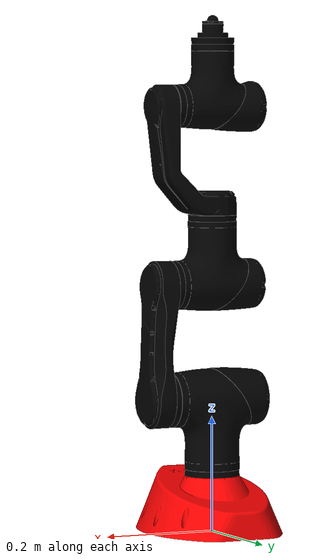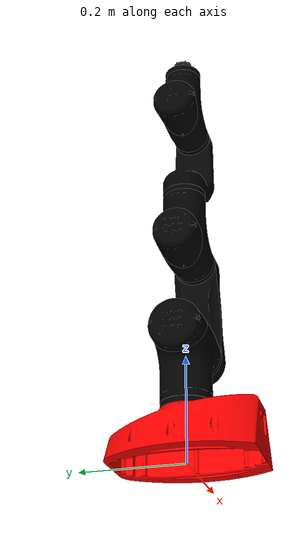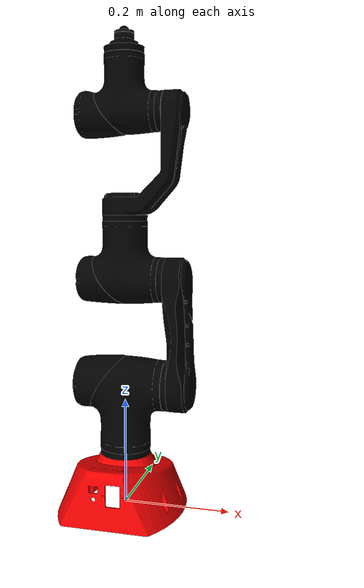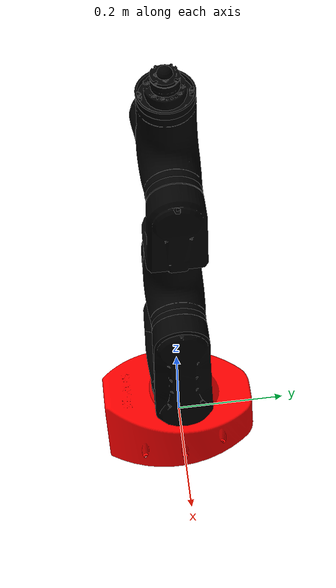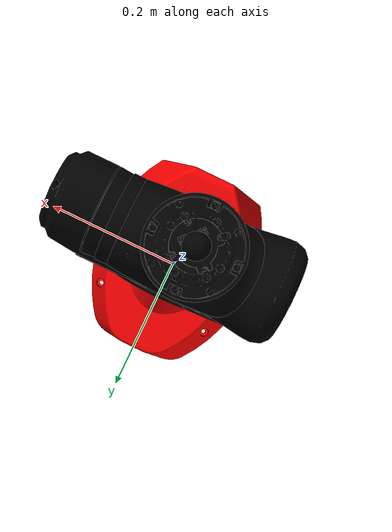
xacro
<?xml version="1.0"?>
<robot xmlns:xacro="http://ros.org/wiki/xacro" name="mara">
  <!-- common stuff -->
  <xacro:include filename="$(find mara_description)/urdf/reinforcement_learning/mara_gazebo_train.urdf.xacro"/>

  <!-- mara -->
  <xacro:include filename="$(find mara_description)/urdf/reinforcement_learning/mara_train.urdf.xacro"/>

  <!-- arm -->
  <xacro:mara_robot_train prefix="" ee_link_distance="0.0" MAC0="_00000000000"/>

  <link name="world"/>

  <link name="base_robot">
    <inertial>
      <origin rpy="0 0 0" xyz="8.625E-08 -4.6583E-06 0.03145"/>
      <mass value="7.033"/>
      <inertia ixx="0.1478344" ixy="0.00001" ixz="0.0" iyy="0.14782335" iyz="0.0" izz="0.29471799"/>
    </inertial>
    <visual>
      <origin rpy="0 0 0" xyz="0 0 0"/>
      <geometry>
        <mesh filename="package://mara_description/meshes/v8_MARA_Base.dae" scale="0.001 0.001 0.001"/>
      </geometry>
      <material name="Gazebo/Black">
        <color rgba="1. 0. 0. 1.0"/>
      </material>
    </visual>
    <collision>
      <origin rpy="0 0 0" xyz="0 0 0"/>
      <geometry>
        <mesh filename="package://mara_description/meshes/v8_MARA_Base.dae" scale="0.001 0.001 0.001"/>
      </geometry>
    </collision>
  </link>
  <gazebo reference="base_robot">
    <material>Gazebo/Black</material>
    <selfCollide>True</selfCollide>
  </gazebo>

  <joint name="world_to_base_robot" type="fixed">
    <origin rpy="0 0 0" xyz="0 0 0"/>
    <parent link="world"/>
    <child link="base_robot"/>
  </joint>

  <joint name="motor1" type="revolute">
    <origin rpy="0 0 0" xyz="0 0 0.06874"/>
    <parent link="base_robot"/>
    <child link="motor1_link"/>
    <axis xyz="0 0 1"/>
    <limit effort="104.0" lower="-3.1416" upper="3.1416" velocity="1.57"/>
    <dynamics damping="0" friction="0"/>
  </joint>
</robot>

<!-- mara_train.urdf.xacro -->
<robot xmlns:xacro="http://ros.org/wiki/xacro">

  <xacro:include filename="$(find mara_description)/urdf/mara.transmission.xacro" />
  <xacro:include filename="$(find mara_description)/urdf/reinforcement_learning/mara_gazebo_train.urdf.xacro" />

  <xacro:macro name="mara_robot_train"  params="prefix ee_link_distance MAC0">

    <link name="${prefix}motor1_link">
      <inertial>
        <origin rpy="0 0 0" xyz="0.02066 0 0.12051"/>
        <mass value="5.6"/>
        <inertia ixx="0.0200769278" ixy="-7.72273E-006" ixz="-0.0050158708" iyy="0.0257088151" iyz="5.49229E-006" izz="0.0120821377"/>
      </inertial>
      <visual>
        <origin rpy="0 0 0" xyz="0 0 0"/>
        <geometry>
          <mesh filename="package://mara_description/meshes/MARA_T49.dae" scale="0.001 0.001 0.001"/>
        </geometry>
        <material name="Gazebo/White">
          <color rgba="0. 0. 0. 1"/>
        </material>
      </visual>
      <collision>
        <origin rpy="0 0 0" xyz="0 0 0"/>
        <geometry>
          <mesh filename="package://mara_description/meshes/MARA_T49.dae" scale="0.001 0.001 0.001"/>
        </geometry>
      </collision>
    </link>
    <gazebo reference="${prefix}motor1_link">
      <material>Gazebo/White</material>
      <selfCollide>True</selfCollide>
    </gazebo>

    <link name="${prefix}motor1_cover">
      <inertial>
        <origin rpy="0 0 0" xyz="0 0 0"/>
        <mass value="0.0"/>
        <inertia ixx="0.0" ixy="0.0" ixz="0.0" iyy="0.0" iyz="0.0" izz="0.0"/>
      </inertial>
      <visual>
        <origin rpy="0 0 0" xyz="0 0 0"/>
        <geometry>
          <mesh filename="package://mara_description/meshes/MARA_T49_Black.dae" scale="0.001 0.001 0.001"/>
        </geometry>
        <material name="Gazebo/Black">
          <color rgba="0. 0. 0. 1"/>
        </material>
      </visual>
      <collision>
        <origin rpy="0 0 0" xyz="0 0 0"/>
        <geometry>
          <mesh filename="package://mara_description/meshes/MARA_T49_Black.dae" scale="0.001 0.001 0.001"/>
        </geometry>
      </collision>
    </link>
    <gazebo reference="${prefix}motor1_cover">
      <material>Gazebo/Black</material>
      <selfCollide>True</selfCollide>
    </gazebo>

    <link name="${prefix}motor2_link">
      <inertial>
        <origin rpy="0 0 0" xyz="-0.01665 0.0 0.09639"/>
        <mass value="1.24"/>
        <inertia ixx="0.0079614839" ixy="0.000000037" ixz="0.0003203013" iyy="0.007135338" iyz="-0.000001062" izz="0.001111114"/>
      </inertial>
      <visual>
        <origin rpy="0 0 0" xyz="0 0 0"/>
        <geometry>
          <mesh filename="package://mara_description/meshes/MARA_Link1.dae" scale="0.001 0.001 0.001"/>
        </geometry>
        <material name="Gazebo/Black">
          <color rgba="0. 0. 0. 1"/>
        </material>
      </visual>
      <collision>
        <origin rpy="0 0 0" xyz="0 0 0"/>
        <geometry>
          <mesh filename="package://mara_description/meshes/MARA_Link1.dae" scale="0.001 0.001 0.001"/>
        </geometry>
      </collision>
    </link>
    <gazebo reference="${prefix}motor2_link">
      <material>Gazebo/Black</material>
      <selfCollide>True</selfCollide>
    </gazebo>

    <link name="${prefix}motor3_link">
      <inertial>
        <origin rpy="0 0 0" xyz="-0.08963 0 0.0403"/>
        <mass value="3.95"/>
        <inertia ixx="0.0115136615" ixy="-1.231046E-005" ixz="0.003148516" iyy="0.0149841676" iyz="-8.81378E-006" izz="0.0070387807"/>
      </inertial>
      <visual>
        <origin rpy="0 0 0" xyz="0 0 0"/>
        <geometry>
          <mesh filename="package://mara_description/meshes/MARA_T30.dae" scale="0.001 0.001 0.001"/>
        </geometry>
        <material name="Gazebo/White">
          <color rgba="0. 0. 0. 1"/>
        </material>
      </visual>
      <collision>
        <origin rpy="0 0 0" xyz="0 0 0"/>
        <geometry>
          <mesh filename="package://mara_description/meshes/MARA_T30.dae" scale="0.001 0.001 0.001"/>
        </geometry>
      </collision>
    </link>
    <gazebo reference="${prefix}motor3_link">
      <material>Gazebo/White</material>
      <selfCollide>True</selfCollide>
    </gazebo>

    <link name="${prefix}motor3_cover">
      <inertial>
        <origin rpy="0 0 0" xyz="0 0 0"/>
        <mass value="0.0"/>
        <inertia ixx="0.0" ixy="0.0" ixz="0.0" iyy="0.0" iyz="0.0" izz="0.0"/>
      </inertial>
      <visual>
        <origin rpy="0 0 0" xyz="0 0 0"/>
        <geometry>
          <mesh filename="package://mara_description/meshes/MARA_T30_Black.dae" scale="0.001 0.001 0.001"/>
        </geometry>
        <material name="Gazebo/Black">
          <color rgba="0. 0. 0. 1"/>
        </material>
      </visual>
      <collision>
        <origin rpy="0 0 0" xyz="0 0 0"/>
        <geometry>
          <mesh filename="package://mara_description/meshes/MARA_T30_Black.dae" scale="0.001 0.001 0.001"/>
        </geometry>
      </collision>
    </link>
    <gazebo reference="${prefix}motor3_cover">
      <material>Gazebo/Black</material>
      <selfCollide>True</selfCollide>
    </gazebo>

    <link name="${prefix}motor4_link">
      <inertial>
        <origin rpy="0 0 0" xyz="0.06357 0.0 0.05698"/>
        <mass value="1.26"/>
        <inertia ixx="0.005919676" ixy="0.000000923" ixz="-0.0022280208" iyy="0.0068807393" iyz="6.1373E-007" izz="0.00257485"/>
      </inertial>
      <visual>
        <origin rpy="0 0 0" xyz="0 0 0"/>
        <geometry>
          <mesh filename="package://mara_description/meshes/MARA_Link2.dae" scale="0.001 0.001 0.001"/>
        </geometry>
        <material name="Gazebo/Black">
          <color rgba="0. 0. 0. 1"/>
        </material>
      </visual>
      <collision>
        <origin rpy="0 0 0" xyz="0 0 0"/>
        <geometry>
          <mesh filename="package://mara_description/meshes/MARA_Link2.dae" scale="0.001 0.001 0.001"/>
        </geometry>
      </collision>
    </link>
    <gazebo reference="${prefix}motor4_link">
      <material>Gazebo/Black</material>
      <selfCollide>True</selfCollide>
    </gazebo>

    <link name="${prefix}motor5_link">
      <inertial>
        <origin rpy="0 0 0" xyz="-0.09105 0.0 0.03676"/>
        <mass value="2.85"/>
        <inertia ixx="0.0072829492" ixy="3.77994E-006" ixz="0.0015682105" iyy="0.0098263499" iyz="2.52745E-006" izz="0.0045615321"/>
      </inertial>
      <visual>
        <origin rpy="0 0 0" xyz="0 0 0"/>
        <geometry>
          <mesh filename="package://mara_description/meshes/MARA_T5.4.dae" scale="0.001 0.001 0.001"/>
        </geometry>
        <material name="Gazebo/White">
          <color rgba="0. 0. 0. 1"/>
        </material>
      </visual>
      <collision>
        <origin rpy="0 0 0" xyz="0 0 0"/>
        <geometry>
          <mesh filename="package://mara_description/meshes/MARA_T5.4.dae" scale="0.001 0.001 0.001"/>
        </geometry>
      </collision>
    </link>
    <gazebo reference="${prefix}motor5_link">
      <material>Gazebo/White</material>
      <selfCollide>True</selfCollide>
    </gazebo>

    <link name="${prefix}motor5_cover">
      <inertial>
        <origin rpy="0 0 0" xyz="0 0 0"/>
        <mass value="0.0"/>
        <inertia ixx="0.0" ixy="0.0" ixz="0.0" iyy="0.0" iyz="0.0" izz="0.0"/>
      </inertial>
      <visual>
        <origin rpy="0 0 0" xyz="0 0 0"/>
        <geometry>
          <mesh filename="package://mara_description/meshes/MARA_T5.4_black.dae" scale="0.001 0.001 0.001"/>
        </geometry>
        <material name="Gazebo/Black">
          <color rgba="0. 0. 0. 1"/>
        </material>
      </visual>
      <collision>
        <origin rpy="0 0 0" xyz="0 0 0"/>
        <geometry>
          <mesh filename="package://mara_description/meshes/MARA_T5.4_black.dae" scale="0.001 0.001 0.001"/>
        </geometry>
      </collision>
    </link>
    <gazebo reference="${prefix}motor5_cover">
      <material>Gazebo/Black</material>
      <selfCollide>True</selfCollide>
    </gazebo>

    <!-- dummy link with the required tags-->
    <link name="${prefix}motor6_link">
      <inertial>
        <origin rpy="0 0 0" xyz="0 0 0"/>
        <mass value="0.00001"/>
        <inertia ixx="0" ixy="0" ixz="0" iyy="0" iyz="0" izz="0"/>
      </inertial>
      <visual>
        <origin rpy="0 0 0" xyz="0 0 0"/>
        <geometry>
          <sphere radius="0"/>
        </geometry>
      </visual>
      <collision>
        <origin rpy="0 0 0" xyz="0 0 0"/>
        <geometry>
          <sphere radius="0"/>
        </geometry>
      </collision>
    </link>

    <link name="${prefix}ee_link">
      <visual>
        <geometry>
          <sphere radius="0.01"/>
        </geometry>
        <material name="Gazebo/Grey">
          <color rgba="0. 0. 0. 1"/>
        </material>
      </visual>
    </link>
    <gazebo reference="${prefix}ee_link">
      <material>Gazebo/Blue</material>
      <selfCollide>False</selfCollide>
    </gazebo>

    <joint name="${prefix}motor1_cover_joint" type="fixed">
      <origin rpy="0 0 0" xyz="0 0 0.0"/>
      <parent link="${prefix}motor1_link"/>
      <child link="${prefix}motor1_cover"/>
    </joint>

    <joint name="${prefix}motor2" type="revolute">
      <origin rpy="0 0 0" xyz="0.118 0 0.1637"/>
      <parent link="${prefix}motor1_link"/>
      <child link="${prefix}motor2_link"/>
      <axis xyz="1 0 0"/>
      <limit effort="104.0" lower="-2.35" upper="2.35" velocity="1.57"/>
      <dynamics damping="0" friction="0"/>
    </joint>

    <joint name="${prefix}motor3" type="revolute">
      <origin rpy="0 0 0" xyz="-0.009 0 0.2"/>
      <parent link="${prefix}motor2_link"/>
      <child link="${prefix}motor3_link"/>
      <axis xyz="-1 0 0"/>
      <limit effort="69" lower="-2.61" upper="2.61" velocity="1.57"/>
      <dynamics damping="0" friction="0"/>
    </joint>

    <joint name="${prefix}motor3_cover_joint" type="fixed">
      <origin rpy="0 0 0" xyz="0 0 0.0"/>
      <parent link="${prefix}motor3_link"/>
      <child link="${prefix}motor3_cover"/>
    </joint>

    <joint name="${prefix}motor4" type="revolute">
      <origin rpy="0 0 0" xyz="-0.109255 0 0.149255"/>
      <parent link="${prefix}motor3_link"/>
      <child link="${prefix}motor4_link"/>
      <axis xyz="0 0 1"/>
      <limit effort="69" lower="-3.14" upper="3.14" velocity="1.57"/>
      <dynamics damping="0" friction="0"/>
    </joint>

    <joint name="${prefix}motor5" type="revolute">
      <origin rpy="0 0 0" xyz="0.1054570 0 0.16074"/>
      <parent link="${prefix}motor4_link"/>
      <child link="${prefix}motor5_link"/>
      <axis xyz="-1 0 0"/>
      <limit effort="34" lower="-2.56" upper="2.56" velocity="1.57"/>
      <dynamics damping="0" friction="0"/>
    </joint>

    <joint name="${prefix}motor5_cover_joint" type="fixed">
      <origin rpy="0 0 0" xyz="0 0 0.0"/>
      <parent link="${prefix}motor5_link"/>
      <child link="${prefix}motor5_cover"/>
    </joint>

    <joint name="${prefix}motor6" type="revolute">
      <origin rpy="0 0 0" xyz="-0.10625569 0 0.14675569"/>
      <parent link="${prefix}motor5_link"/>
      <child link="${prefix}motor6_link"/>
      <axis xyz="0 0 1"/>
      <limit effort="34" lower="-3.14" upper="3.14" velocity="1.57"/>
      <dynamics damping="0" friction="0"/>
    </joint>

    <joint name="${prefix}ee_link" type="fixed">
      <origin rpy="0 0 0" xyz="0 0.0 ${ee_link_distance}"/>
      <parent link="${prefix}motor6_link"/>
      <child link="${prefix}ee_link"/>
    </joint>

    <xacro:mara_transmission prefix="${prefix}"/>
    <xacro:mara_gazebo_train prefix="${prefix}" MAC0="${MAC0}"/>

  </xacro:macro>
</robot>
